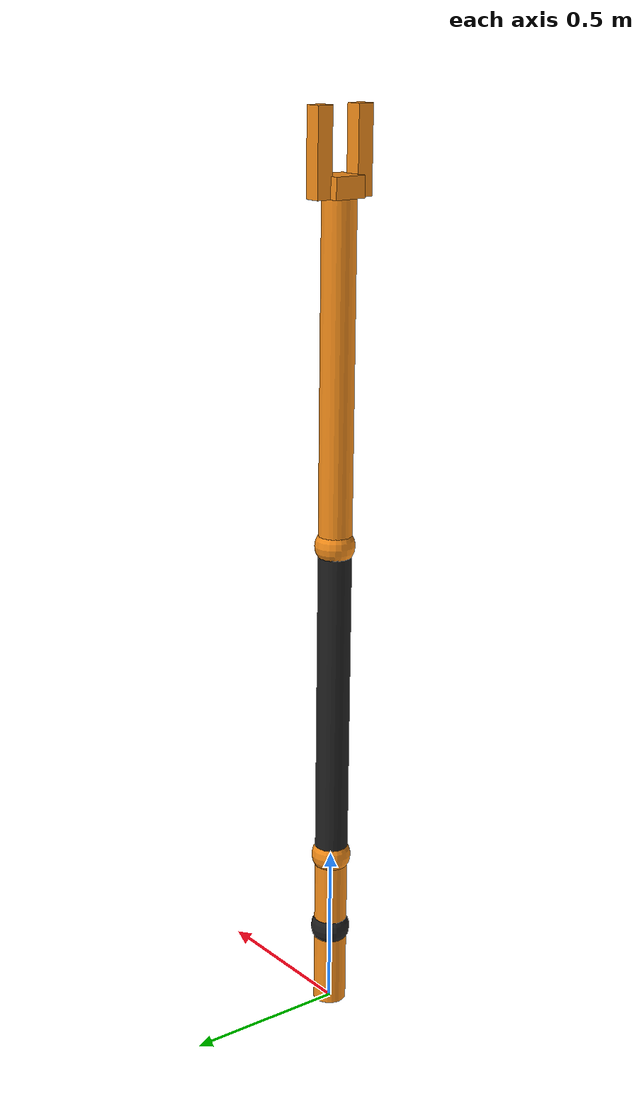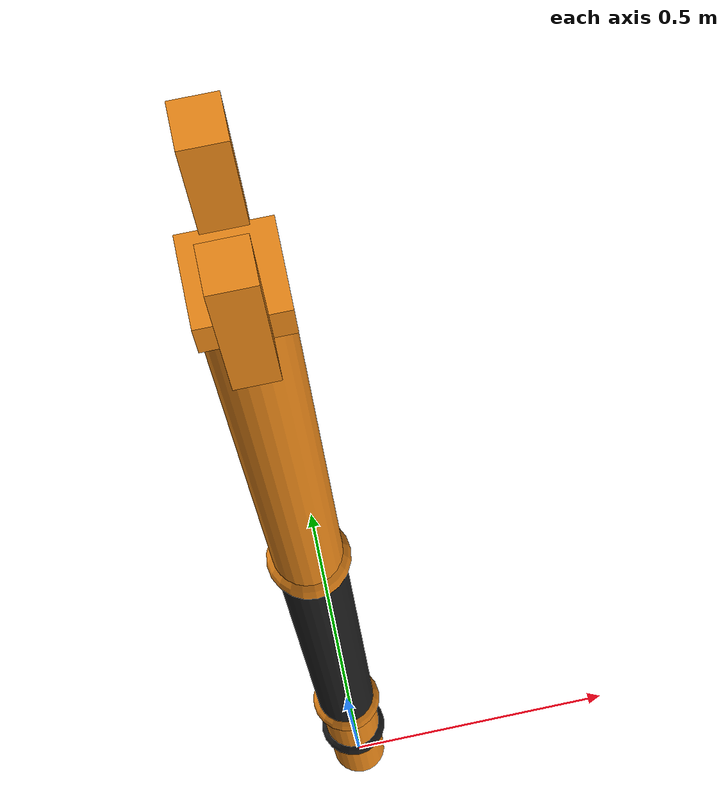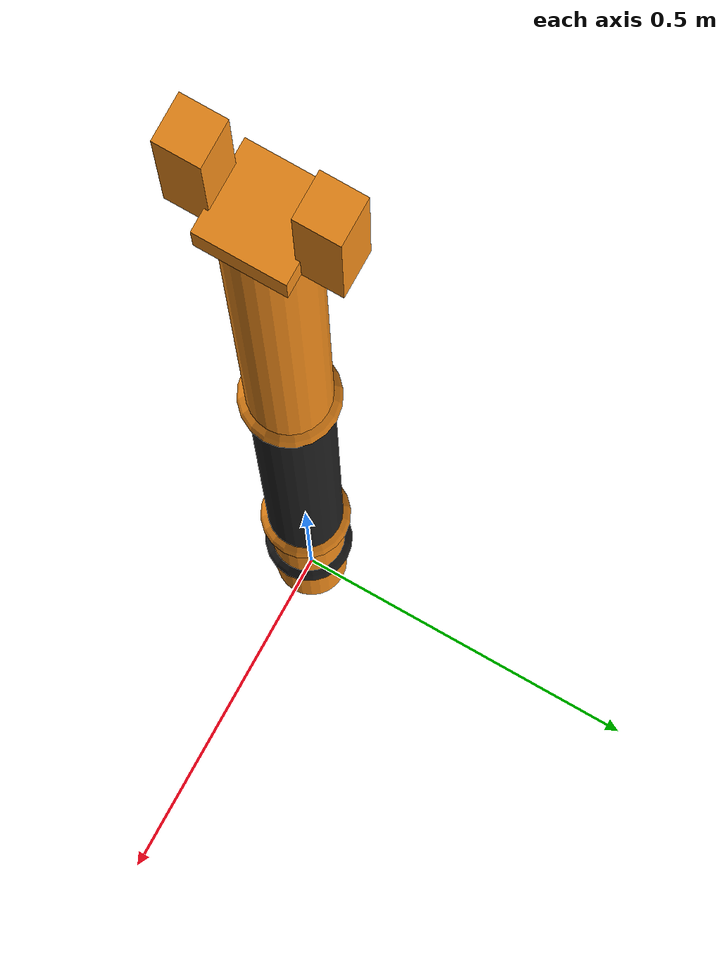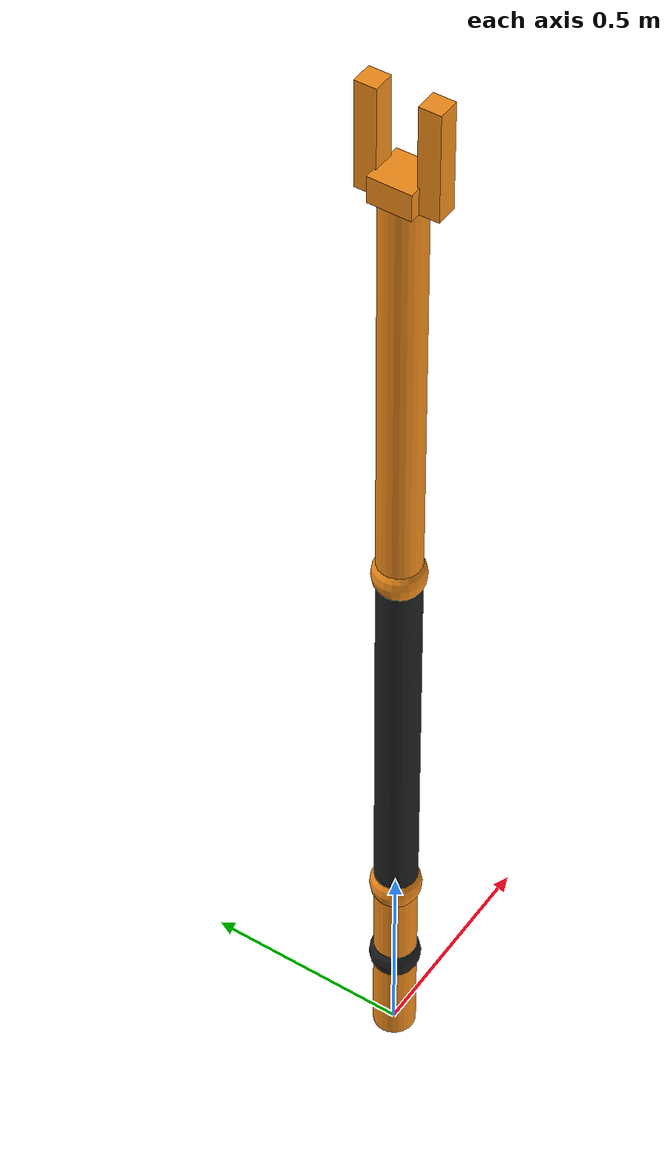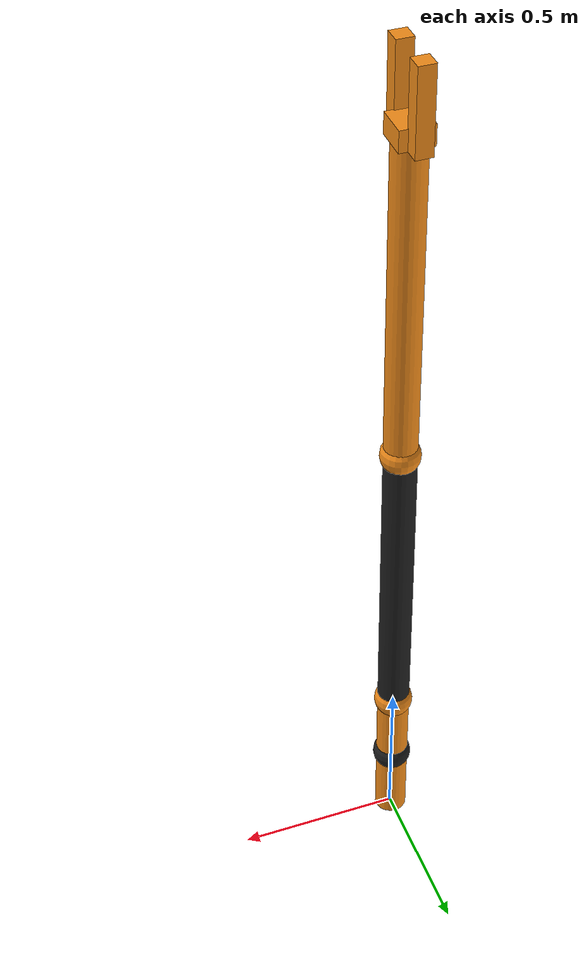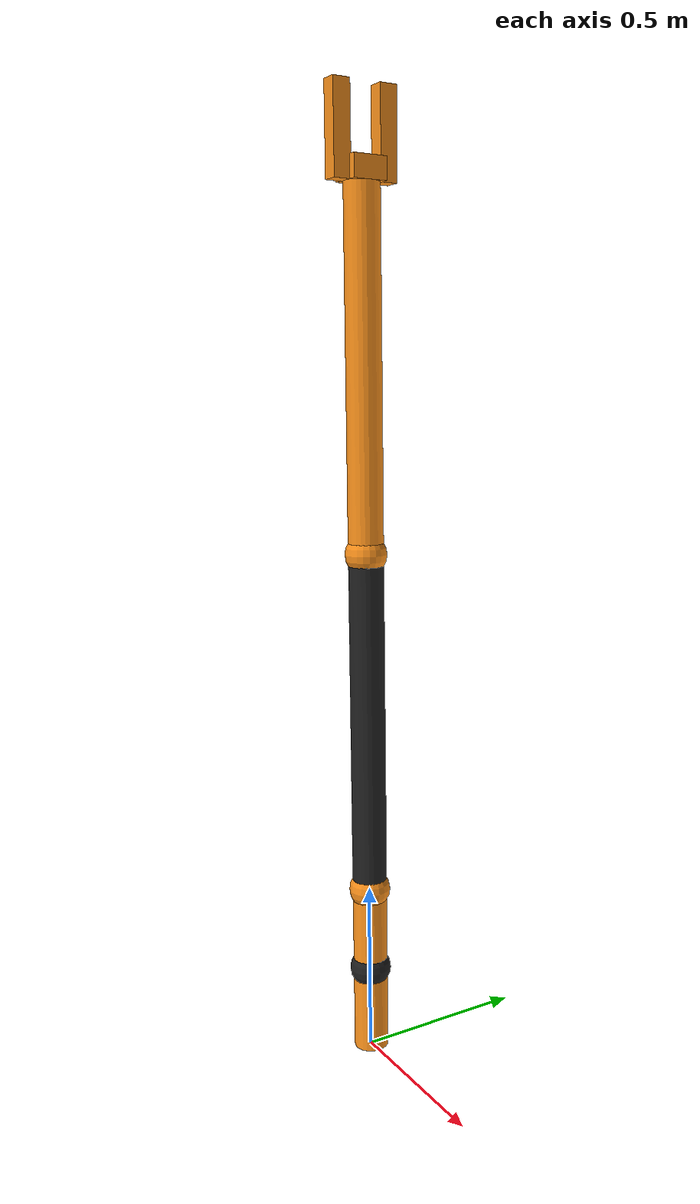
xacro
<?xml version="1.0"?>
<!-- Revolute-Revolute Manipulator -->
<robot name="rrbot" xmlns:xacro="http://www.ros.org/wiki/xacro">

  <!-- Constants for robot dimensions -->
  <xacro:property name="PI" value="3.1415926535897931"/>
  <xacro:property name="mass" value="1" /> <!-- arbitrary value for mass -->
  <xacro:property name="r" value="0.05" /> <!-- Circle dimensions (PI*radius^2) of Rods -->
  <xacro:property name="l1" value="0.25" /> <!-- Link 1 -->
  <xacro:property name="l2" value="1" /> <!-- Link 2 -->
  <xacro:property name="l3" value="1" /> <!-- Link 3 -->
  <xacro:property name="camera_link" value="0.05" /> <!-- Size of square 'camera' cylinder -->
  <xacro:property name="axel_offset" value="0.05" /> <!-- Space btw top of beam and the each joint -->

  <!-- Import all Gazebo-customization elements, including Gazebo colors -->
  <xacro:include filename="$(find rifo_gazebo)/urdf/rrbot.gazebo" />
  <!-- Import Rviz colors -->
  <xacro:include filename="$(find rifo_gazebo)/urdf/materials.xacro" />

  <!-- Used for fixing robot to Gazebo 'base_link' -->
  <link name="world"/>

  <joint name="fixed" type="fixed">
    <parent link="world"/>
    <child link="base"/>
  </joint>

  <!-- Base Link -->
  <link name="base">
    <collision>
      <origin xyz="0 0 ${l1/2}" rpy="0 0 0"/>
      <geometry>
	      <cylinder length="${l1}" radius="${r}"/>
      </geometry>
    </collision>

    <visual>
      <origin xyz="0 0 ${l1/2}" rpy="0 0 0"/>
      <geometry>
        <cylinder length="${l1}" radius="${r}"/>
      </geometry>
      <material name="orange"/>
    </visual>

    <inertial>
      <origin xyz="0 0 ${l1/2}" rpy="0 0 0"/>
      <mass value="${mass}"/>
      <inertia
	  ixx="${mass / 12.0 * (3*r*r + l1*l1)}" ixy="0.0" ixz="0.0"
	  iyy="${mass / 12.0 * (l1*l1 + 3*r*r)}" iyz="0.0"
	  izz="${mass / 12.0 * (3*r*r)}"/>
    </inertial>
  </link>

  <joint name="joint1" type="continuous">
    <parent link="base"/>
    <child link="link1"/>
    <origin xyz="0 0 ${l1}" rpy="0 0 0"/>
    <axis xyz="0 0 1"/>
    <dynamics damping="0.7"/>
  </joint>

  <link name="link1">

<!-- Sphere -->
    <collision>
      <origin xyz="0 0 0" rpy="0 0 0"/>
      <geometry>
	  <sphere radius="0.06"/>
      </geometry>
    </collision>

    <visual>
      <origin xyz="0 0 0" rpy="0 0 0"/>
      <geometry>
	 <sphere radius="0.06"/>
      </geometry>
      <material name="Black"/>
    </visual>

    <inertial>
      <origin xyz="0 0 0" rpy="0 0 0"/>
      <mass value="${mass}"/>
      <inertia
	  ixx="0.001" ixy="0.0" ixz="0.0"
	  iyy="0.001" iyz="0.0"
	  izz="0.001"/>
    </inertial>

<!-- Cylinder -->
    <collision>
      <origin xyz="0 0 ${l1/2}" rpy="0 0 0"/>
      <geometry>
	      <cylinder length="${l1}" radius="${r}"/>
      </geometry>
    </collision>

    <visual>
      <origin xyz="0 0 ${l1/2}" rpy="0 0 0"/>
      <geometry>
	      <cylinder length="${l1}" radius="${r}"/>
      </geometry>
      <material name="orange"/>
    </visual>

    <inertial>
      <origin xyz="0 0 ${l1/2}" rpy="0 0 0"/>
      <mass value="${mass}"/>
      <inertia
	  ixx="${mass / 12.0 * (3*r*r + l1*l1)}" ixy="0.0" ixz="0.0"
	  iyy="${mass / 12.0 * (l1*l1 + 3*r*r)}" iyz="0.0"
	  izz="${mass / 12.0 * (3*r*r)}"/>
    </inertial>
  </link>

  <joint name="joint2" type="continuous">
    <parent link="link1"/>
    <child link="link2"/>
    <origin xyz="0 0 ${l1}" rpy="0 0 0"/>
    <axis xyz="0 1 0"/>
    <dynamics damping="0.7"/>
  </joint>

  <!-- Middle Link -->
<link name="link2">
<!-- Sphere -->
    <collision>
      <origin xyz="0 0 0" rpy="0 0 0"/>
      <geometry>
	  <sphere radius="0.06"/>
      </geometry>
    </collision>

    <visual>
      <origin xyz="0 0 0" rpy="0 0 0"/>
      <geometry>
	 <sphere radius="0.06"/>
      </geometry>
      <material name="orange"/>
    </visual>

    <inertial>
      <origin xyz="0 0 0" rpy="0 0 0"/>
      <mass value="${mass}"/>
      <inertia
	  ixx="0.001" ixy="0.0" ixz="0.0"
	  iyy="0.001" iyz="0.0"
	  izz="0.001"/>
    </inertial>

<!-- Cylinder -->

    <collision>
      <origin xyz="0 0 ${l2/2}" rpy="0 0 0"/>
      <geometry>
	<cylinder length="${l2}" radius="${r}"/>
      </geometry>
    </collision>

    <visual>
      <origin xyz="0 0 ${l2/2}" rpy="0 0 0"/>
      <geometry>
	<cylinder length="${l2}" radius="${r}"/>
      </geometry>
      <material name="black"/>
    </visual>

    <inertial>
      <origin xyz="0 0 ${l2/2}" rpy="0 0 0"/>
      <mass value="${mass}"/>
      <inertia
	  ixx="${mass / 12.0 * (3*r*r + l2*l2)}" ixy="0.0" ixz="0.0"
	  iyy="${mass / 12.0 * (l2*l2 + 3*r*r)}" iyz="0.0"
	  izz="${mass / 12.0 * (3*r*r)}"/>
    </inertial>
  </link>

  <joint name="joint3" type="continuous">
    <parent link="link2"/>
    <child link="link3"/>
    <origin xyz="0 0 ${l2}" rpy="0 0 0"/>
    <axis xyz="0 1 0"/>
    <dynamics damping="0.7"/>
  </joint>

  <!-- Top Link -->
  <link name="link3">

<!-- Sphere -->
    <collision>
      <origin xyz="0 0 0" rpy="0 0 0"/>
      <geometry>
	  <sphere radius="0.06"/>
      </geometry>
    </collision>

    <visual>
      <origin xyz="0 0 0" rpy="0 0 0"/>
      <geometry>
	 <sphere radius="0.06"/>
      </geometry>
      <material name="orange"/>
    </visual>

    <inertial>
      <origin xyz="0 0 0" rpy="0 0 0"/>
      <mass value="${mass}"/>
      <inertia
	  ixx="0.001" ixy="0.0" ixz="0.0"
	  iyy="0.001" iyz="0.0"
	  izz="0.001"/>
    </inertial>

<!-- Cylinder -->
    <collision>
      <origin xyz="0 0 ${l3/2}" rpy="0 0 0"/>
      <geometry>
	<cylinder length="${l3}" radius="${r}"/>
      </geometry>
    </collision>

    <visual>
      <origin xyz="0 0 ${l3/2}" rpy="0 0 0"/>
      <geometry>
	<cylinder length="${l3}" radius="${r}"/>
      </geometry>
      <material name="orange"/>
    </visual>

    <inertial>
      <origin xyz="0 0 ${l3/2}" rpy="0 0 0"/>
      <mass value="${mass}"/>
      <inertia
	  ixx="${mass / 12.0 * (3*r*r + l3*l3)}" ixy="0.0" ixz="0.0"
	  iyy="${mass / 12.0 * (l3*l3 + 3*r*r)}" iyz="0.0"
	  izz="${mass / 12.0 * (3*r*r)}"/>
    </inertial>
  </link>

  <joint name="end_effector_fixed" type="fixed">
    <parent link="link3"/>
    <child link="end_effector"/>
    <origin xyz="0 0 ${l2}" rpy="0 0 0"/>
  </joint>

<!-- End_effector -->
  <link name="end_effector">
   <collision>
      <origin xyz="0 0 0.03125" rpy="0 0 0"/>
      <geometry>
	      <box size="0.1 0.1 0.0625"/>
      </geometry>
    </collision>

    <visual>
      <origin xyz="0 0 0.03125" rpy="0 0 0"/>
      <geometry>
	      <box size="0.1 0.1 0.0625"/>
      </geometry>
      <material name="orange"/>
    </visual>

    <inertial>
      <origin xyz="0 0 0.03125" rpy="0 0 0"/>
      <mass value="0"/>
      <inertia
	  ixx="0.00052" ixy="0.0" ixz="0.0"
	  iyy="0.00052" iyz="0.0"
	  izz="0.0008"/>
    </inertial>

    <collision>
      <origin xyz="0 0.07 0.125" rpy="0 0 0"/>
      <geometry>
	      <box size="0.05 0.05 0.25"/>
      </geometry>
    </collision>

    <visual>
      <origin xyz="0 0.07 0.125" rpy="0 0 0"/>
      <geometry>
	      <box size="0.05 0.05 0.25"/>
      </geometry>
      <material name="orange"/>
    </visual>

    <inertial>
      <origin xyz="0 0.07 0.125" rpy="0 0 0"/>
      <mass value="0"/>
      <inertia
	  ixx="0.0002" ixy="0.0" ixz="0.0"
	  iyy="0.0002" iyz="0.0"
	  izz="0.0004"/>
    </inertial>

<collision>
      <origin xyz="0 -0.07 0.125" rpy="0 0 0"/>
      <geometry>
	      <box size="0.05 0.05 0.25"/>
      </geometry>
    </collision>

    <visual>
      <origin xyz="0 -0.07 0.125" rpy="0 0 0"/>
      <geometry>
	      <box size="0.05 0.05 0.25"/>
      </geometry>
      <material name="orange"/>
    </visual>

    <inertial>
      <origin xyz="0 -0.07 0.125" rpy="0 0 0"/>
      <mass value="0"/>
      <inertia
	  ixx="0.0002" ixy="0.0" ixz="0.0"
	  iyy="0.0002" iyz="0.0"
	  izz="0.0004"/>
    </inertial>
  </link>

  <transmission name="tran1">
    <type>transmission_interface/SimpleTransmission</type>
    <joint name="joint1">
      <hardwareInterface>hardware_interface/PositionJointInterface</hardwareInterface>
    </joint>
    <actuator name="motor1">
      <hardwareInterface>hardware_interface/PositionJointInterface</hardwareInterface>
      <mechanicalReduction>1</mechanicalReduction>
    </actuator>
  </transmission>

  <transmission name="tran2">
    <type>transmission_interface/SimpleTransmission</type>
    <joint name="joint2">
      <hardwareInterface>hardware_interface/PositionJointInterface</hardwareInterface>
    </joint>
    <actuator name="motor2">
      <hardwareInterface>hardware_interface/PositionJointInterface</hardwareInterface>
      <mechanicalReduction>1</mechanicalReduction>
    </actuator>
  </transmission>

  <transmission name="tran3">
    <type>transmission_interface/SimpleTransmission</type>
    <joint name="joint3">
      <hardwareInterface>hardware_interface/PositionJointInterface</hardwareInterface>
    </joint>
    <actuator name="motor3">
      <hardwareInterface>hardware_interface/PositionJointInterface</hardwareInterface>
      <mechanicalReduction>1</mechanicalReduction>
    </actuator>
  </transmission>

</robot>
